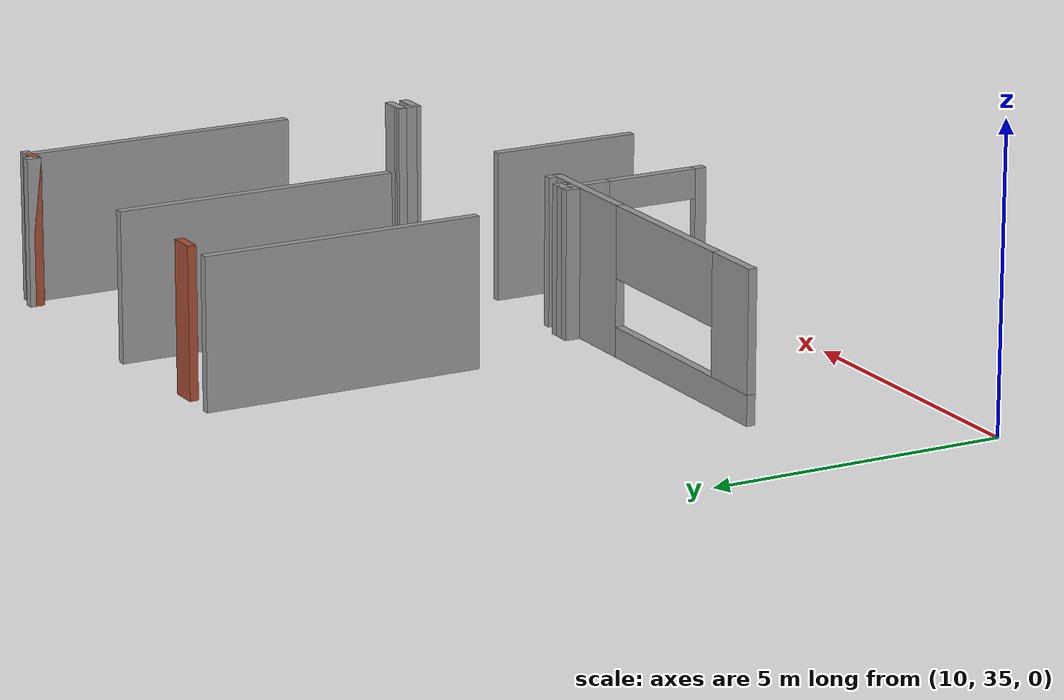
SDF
<sdf version="1.7">
 <world name="RaSpectLoc_ign">
  <model name="CVSSP">
   <pose>23.8714 24.094 0 0 -0 0</pose>
   <link name="Wall_21">
    <pose>-6.21845 12.8269 0 0 0 -1.57055</pose>
    <visual name="Wall_21_Visual_0">
     <pose>-0.893143 0 1.25 0 -0 0</pose>
     <geometry><box><size>0.719046 0.15 2.5</size></box></geometry>
     <material>
      <script><uri>file://media/materials/scripts/gazebo.material</uri><name>Gazebo/Grey</name></script>
      <ambient>0.588235 0.588235 0.588235 1</ambient>
     </material>
    </visual>
    <collision name="Wall_21_Collision_0">
     <geometry><box><size>0.719046 0.15 2.5</size></box></geometry>
     <pose>-0.893143 0 1.25 0 -0 0</pose>
    </collision>
    <visual name="Wall_21_Visual_1">
     <pose>1.15058 0 1.25 0 -0 0</pose>
     <geometry><box><size>0.204165 0.15 2.5</size></box></geometry>
     <material>
      <script><uri>file://media/materials/scripts/gazebo.material</uri><name>Gazebo/Grey</name></script>
      <ambient>0.588235 0.588235 0.588235 1</ambient>
     </material>
    </visual>
    <collision name="Wall_21_Collision_1">
     <geometry><box><size>0.204165 0.15 2.5</size></box></geometry>
     <pose>1.15058 0 1.25 0 -0 0</pose>
    </collision>
    <visual name="Wall_21_Visual_2">
     <pose>0.257441 0 2.25 0 -0 0</pose>
     <geometry><box><size>1.58212 0.15 0.5</size></box></geometry>
     <material>
      <script><uri>file://media/materials/scripts/gazebo.material</uri><name>Gazebo/Grey</name></script>
      <ambient>0.588235 0.588235 0.588235 1</ambient>
     </material>
    </visual>
    <collision name="Wall_21_Collision_2">
     <geometry><box><size>1.58212 0.15 0.5</size></box></geometry>
     <pose>0.257441 0 2.25 0 -0 0</pose>
    </collision>
   </link>
   <link name="Wall_25">
    <collision name="Wall_25_Collision">
     <geometry><box><size>2.54698 0.15 2.5</size></box></geometry>
     <pose>0 0 1.25 0 -0 0</pose>
    </collision>
    <visual name="Wall_25_Visual">
     <pose>0 0 1.25 0 -0 0</pose>
     <geometry><box><size>2.54698 0.15 2.5</size></box></geometry>
     <material>
      <script><uri>file://media/materials/scripts/gazebo.material</uri><name>Gazebo/Grey</name></script>
      <ambient>0.588235 0.588235 0.588235 1</ambient>
     </material>
    </visual>
    <pose>-3.87405 12.8463 0 0 -0 1.5708</pose>
   </link>
   <link name="Wall_315">
    <collision name="Wall_315_Collision">
     <geometry><box><size>4.75 0.15 2.5</size></box></geometry>
     <pose>0 0 1.25 0 -0 0</pose>
    </collision>
    <visual name="Wall_315_Visual">
     <pose>0 0 1.25 0 -0 0</pose>
     <geometry><box><size>4.75 0.15 2.5</size></box></geometry>
     <material>
      <script><uri>file://media/materials/scripts/gazebo.material</uri><name>Gazebo/Grey</name></script>
      <ambient>0.588235 0.588235 0.588235 1</ambient>
     </material>
    </visual>
    <pose>-7.00685 18.5251 0 0 -0 1.5708</pose>
   </link>
   <link name="Wall_318">
    <collision name="Wall_318_Collision">
     <geometry><box><size>4.79 0.15 2.5</size></box></geometry>
     <pose>0 0 1.25 0 -0 0</pose>
    </collision>
    <visual name="Wall_318_Visual">
     <pose>0 0 1.25 0 -0 0</pose>
     <geometry><box><size>4.79 0.15 2.5</size></box></geometry>
     <material>
      <script><uri>file://media/materials/scripts/gazebo.material</uri><name>Gazebo/Grey</name></script>
      <ambient>1 1 1 1</ambient>
     </material>
    </visual>
    <pose>-4.1133 18.5854 0 0 0 -1.5708</pose>
   </link>
   <link name="Wall_320">
    <collision name="Wall_320_Collision">
     <geometry><box><size>4.75 0.15 2.5</size></box></geometry>
     <pose>0 0 1.25 0 -0 0</pose>
    </collision>
    <visual name="Wall_320_Visual">
     <pose>0 0 1.25 0 -0 0</pose>
     <geometry><box><size>4.75 0.15 2.5</size></box></geometry>
     <material>
      <script><uri>file://media/materials/scripts/gazebo.material</uri><name>Gazebo/Grey</name></script>
      <ambient>0.588235 0.588235 0.588235 1</ambient>
     </material>
    </visual>
    <pose>-0.323303 18.5354 0 0 -0 1.5708</pose>
   </link>
   <link name="Wall_326">
    <collision name="Wall_326_Collision">
     <geometry><box><size>0.41 0.15 2.5</size></box></geometry>
     <pose>0 0 1.25 0 -0 0</pose>
    </collision>
    <visual name="Wall_326_Visual">
     <pose>0 0 1.25 0 -0 0</pose>
     <geometry><box><size>0.41 0.15 2.5</size></box></geometry>
     <material>
      <script><uri>file://media/materials/scripts/gazebo.material</uri><name>Gazebo/Bricks</name></script>
      <ambient>1 1 1 1</ambient>
     </material>
    </visual>
    <pose>-0.453303 20.8354 0 0 -0 3.14159</pose>
   </link>
   <link name="Wall_327">
    <collision name="Wall_327_Collision">
     <geometry><box><size>0.25 0.15 2.5</size></box></geometry>
     <pose>0 0 1.25 0 -0 0</pose>
    </collision>
    <visual name="Wall_327_Visual">
     <pose>0 0 1.25 0 -0 0</pose>
     <geometry><box><size>0.25 0.15 2.5</size></box></geometry>
     <material>
      <script><uri>file://media/materials/scripts/gazebo.material</uri><name>Gazebo/Grey</name></script>
      <ambient>1 1 1 1</ambient>
     </material>
    </visual>
    <pose>-0.583303 20.8854 0 0 -0 1.5708</pose>
   </link>
   <link name="Wall_329">
    <collision name="Wall_329_Collision">
     <geometry><box><size>0.25 0.15 2.5</size></box></geometry>
     <pose>0 0 1.25 0 -0 0</pose>
    </collision>
    <visual name="Wall_329_Visual">
     <pose>0 0 1.25 0 -0 0</pose>
     <geometry><box><size>0.25 0.15 2.5</size></box></geometry>
     <material>
      <script><uri>file://media/materials/scripts/gazebo.material</uri><name>Gazebo/Grey</name></script>
      <ambient>1 1 1 1</ambient>
     </material>
    </visual>
    <pose>-0.273303 20.8354 0 0 -0 0</pose>
   </link>
   <link name="Wall_619">
    <collision name="Wall_619_Collision">
     <geometry><box><size>0.491176 0.15 2.5</size></box></geometry>
     <pose>0 0 1.25 0 -0 0</pose>
    </collision>
    <visual name="Wall_619_Visual">
     <pose>0 0 1.25 0 -0 0</pose>
     <geometry><box><size>0.491176 0.15 2.5</size></box></geometry>
     <material>
      <script><uri>file://media/materials/scripts/gazebo.material</uri><name>Gazebo/Grey</name></script>
      <ambient>1 1 1 1</ambient>
     </material>
    </visual>
    <pose>-0.431731 14.1578 0 0 -0 0</pose>
   </link>
   <link name="Wall_621">
    <collision name="Wall_621_Collision">
     <geometry><box><size>0.479611 0.15 2.5</size></box></geometry>
     <pose>0 0 1.25 0 -0 0</pose>
    </collision>
    <visual name="Wall_621_Visual">
     <pose>0 0 1.25 0 -0 0</pose>
     <geometry><box><size>0.479611 0.15 2.5</size></box></geometry>
     <material>
      <script><uri>file://media/materials/scripts/gazebo.material</uri><name>Gazebo/Grey</name></script>
      <ambient>1 1 1 1</ambient>
     </material>
    </visual>
    <pose>-0.425949 13.8861 0 0 -0 3.14159</pose>
   </link>
   <link name="Wall_622">
    <collision name="Wall_622_Collision">
     <geometry><box><size>0.421846 0.15 2.5</size></box></geometry>
     <pose>0 0 1.25 0 -0 0</pose>
    </collision>
    <visual name="Wall_622_Visual">
     <pose>0 0 1.25 0 -0 0</pose>
     <geometry><box><size>0.421846 0.15 2.5</size></box></geometry>
     <material>
      <script><uri>file://media/materials/scripts/gazebo.material</uri><name>Gazebo/Grey</name></script>
      <ambient>1 1 1 1</ambient>
     </material>
    </visual>
    <pose>-0.593646 14.0219 0 0 -0 1.59207</pose>
   </link>
   <link name="Wall_624">
    <collision name="Wall_624_Collision">
     <geometry><box><size>0.291595 0.15 2.5</size></box></geometry>
     <pose>0 0 1.25 0 -0 0</pose>
    </collision>
    <visual name="Wall_624_Visual">
     <pose>0 0 1.25 0 -0 0</pose>
     <geometry><box><size>0.291595 0.15 2.5</size></box></geometry>
     <material>
      <script><uri>file://media/materials/scripts/gazebo.material</uri><name>Gazebo/Grey</name></script>
      <ambient>1 1 1 1</ambient>
     </material>
    </visual>
    <pose>-5.57863 13.9687 0 0 0 -1.5708</pose>
   </link>
   <link name="Wall_625">
    <pose>-8.55211 13.8979 0 0 -0 3.14159</pose>
    <visual name="Wall_625_Visual_0">
     <pose>-2.01383 0 1.25 0 -0 0</pose>
     <geometry><box><size>2.06931 0.15 2.5</size></box></geometry>
     <material>
      <script><uri>file://media/materials/scripts/gazebo.material</uri><name>Gazebo/Grey</name></script>
      <ambient>1 1 1 1</ambient>
     </material>
    </visual>
    <collision name="Wall_625_Collision_0">
     <geometry><box><size>2.06931 0.15 2.5</size></box></geometry>
     <pose>-2.01383 0 1.25 0 -0 0</pose>
    </collision>
    <visual name="Wall_625_Visual_1">
     <pose>1.03465 0 0.25 0 -0 0</pose>
     <geometry><box><size>4.02766 0.15 0.5</size></box></geometry>
     <material>
      <script><uri>file://media/materials/scripts/gazebo.material</uri><name>Gazebo/Grey</name></script>
      <ambient>1 1 1 1</ambient>
     </material>
    </visual>
    <collision name="Wall_625_Collision_1">
     <geometry><box><size>4.02766 0.15 0.5</size></box></geometry>
     <pose>1.03465 0 0.25 0 -0 0</pose>
    </collision>
    <visual name="Wall_625_Visual_2">
     <pose>2.51124 0 1.5 0 -0 0</pose>
     <geometry><box><size>1.07449 0.15 2</size></box></geometry>
     <material>
      <script><uri>file://media/materials/scripts/gazebo.material</uri><name>Gazebo/Grey</name></script>
      <ambient>1 1 1 1</ambient>
     </material>
    </visual>
    <collision name="Wall_625_Collision_2">
     <geometry><box><size>1.07449 0.15 2</size></box></geometry>
     <pose>2.51124 0 1.5 0 -0 0</pose>
    </collision>
    <visual name="Wall_625_Visual_3">
     <pose>0.497408 0 1.9 0 -0 0</pose>
     <geometry><box><size>2.95317 0.15 1.2</size></box></geometry>
     <material>
      <script><uri>file://media/materials/scripts/gazebo.material</uri><name>Gazebo/Grey</name></script>
      <ambient>1 1 1 1</ambient>
     </material>
    </visual>
    <collision name="Wall_625_Collision_3">
     <geometry><box><size>2.95317 0.15 1.2</size></box></geometry>
     <pose>0.497408 0 1.9 0 -0 0</pose>
    </collision>
   </link>
   <link name="Wall_628">
    <collision name="Wall_628_Collision">
     <geometry><box><size>0.251643 0.15 2.5</size></box></geometry>
     <pose>0 0 1.25 0 -0 0</pose>
    </collision>
    <visual name="Wall_628_Visual">
     <pose>0 0 1.25 0 -0 0</pose>
     <geometry><box><size>0.251643 0.15 2.5</size></box></geometry>
     <material>
      <script><uri>file://media/materials/scripts/gazebo.material</uri><name>Gazebo/Grey</name></script>
      <ambient>1 1 1 1</ambient>
     </material>
    </visual>
    <pose>-6.3574 14.1103 0 0 -0 1.5708</pose>
   </link>
   <link name="Wall_629">
    <collision name="Wall_629_Collision">
     <geometry><box><size>0.453417 0.15 2.5</size></box></geometry>
     <pose>0 0 1.25 0 -0 0</pose>
    </collision>
    <visual name="Wall_629_Visual">
     <pose>0 0 1.25 0 -0 0</pose>
     <geometry><box><size>0.453417 0.15 2.5</size></box></geometry>
     <material>
      <script><uri>file://media/materials/scripts/gazebo.material</uri><name>Gazebo/Grey</name></script>
      <ambient>1 1 1 1</ambient>
     </material>
    </visual>
    <pose>-6.20569 14.1608 0 0 -0 0</pose>
   </link>
   <link name="Wall_630">
    <collision name="Wall_630_Collision">
     <geometry><box><size>0.220797 0.15 2.5</size></box></geometry>
     <pose>0 0 1.25 0 -0 0</pose>
    </collision>
    <visual name="Wall_630_Visual">
     <pose>0 0 1.25 0 -0 0</pose>
     <geometry><box><size>0.220797 0.15 2.5</size></box></geometry>
     <material>
      <script><uri>file://media/materials/scripts/gazebo.material</uri><name>Gazebo/Grey</name></script>
      <ambient>1 1 1 1</ambient>
     </material>
    </visual>
    <pose>-6.05398 14.1255 0 0 0 -1.5708</pose>
   </link>
   <link name="Wall_663">
    <collision name="Wall_663_Collision">
     <geometry><box><size>0.456076 0.15 2.5</size></box></geometry>
     <pose>0 0 1.25 0 -0 0</pose>
    </collision>
    <visual name="Wall_663_Visual">
     <pose>0 0 1.25 0 -0 0</pose>
     <geometry><box><size>0.456076 0.15 2.5</size></box></geometry>
     <material>
      <script><uri>file://media/materials/scripts/gazebo.material</uri><name>Gazebo/Bricks</name></script>
      <ambient>1 1 1 1</ambient>
     </material>
    </visual>
    <pose>-6.21292 20.8145 0 0 -0 0</pose>
   </link>
   <static>1</static>
  </model>
 </world>
</sdf>
